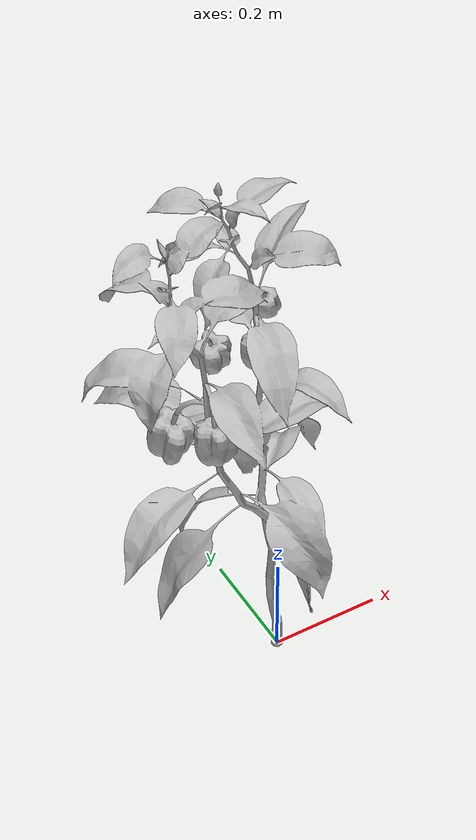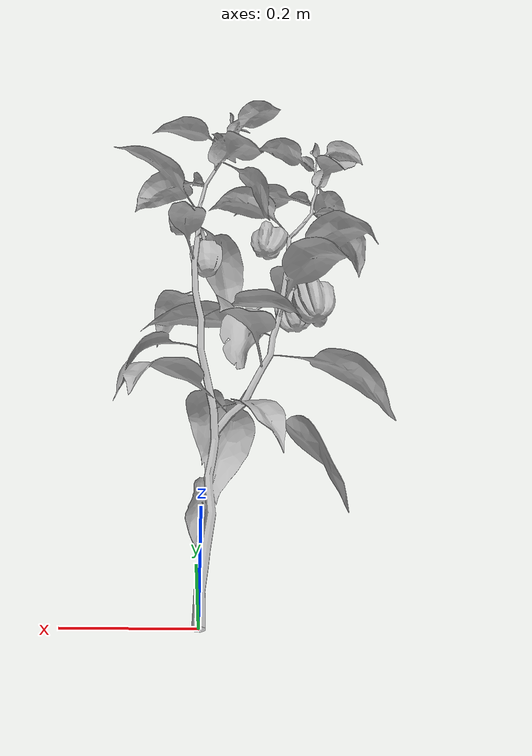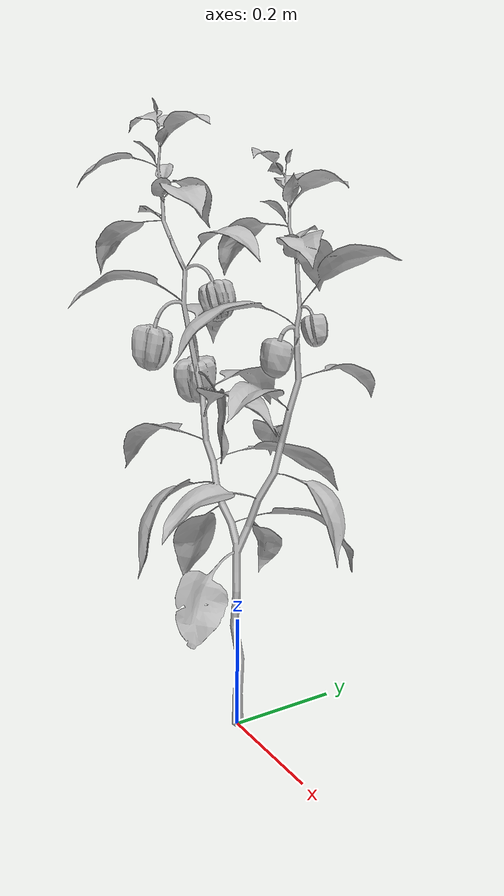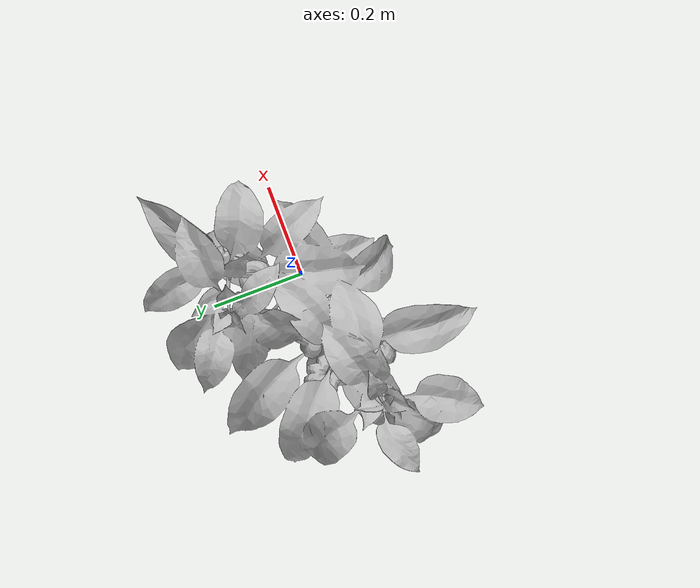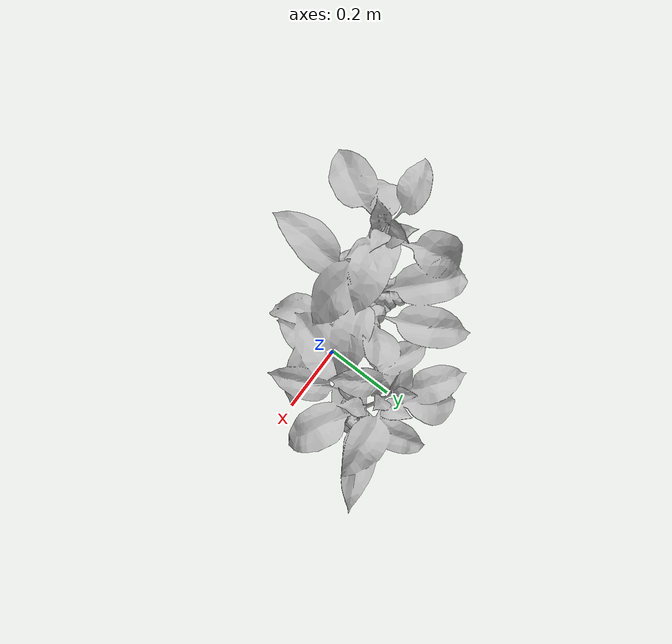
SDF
<?xml version='1.0'?>
<sdf version='1.6'>

  <model name='capsicum_plant_5_detachable'>

    <static>1</static>

    <link name='link_capsicum_plant_5_body'>
       <visual name='visual'>
        <pose frame=''>0 0 0 0 0 0</pose>
        <geometry>
          <mesh>
            <uri>model://capsicum_plant_5_detachable/meshes/VG07_5_without_fruit.dae</uri>
          </mesh>
        </geometry>
      </visual>
    </link>

    <link name='link_capsicum_plant_5_fruit1'>
       <visual name='visual'>
        <pose frame=''>0 0 0 0 0 0</pose>
        <geometry>
          <mesh>
            <uri>model://capsicum_plant_5_detachable/meshes/VG07_5_fruit1.dae</uri>
          </mesh>
        </geometry>
      </visual>
    </link>

    <link name='link_capsicum_plant_5_fruit2'>
       <visual name='visual'>
        <pose frame=''>0 0 0 0 0 0</pose>
        <geometry>
          <mesh>
            <uri>model://capsicum_plant_5_detachable/meshes/VG07_5_fruit2.dae</uri>
          </mesh>
        </geometry>
      </visual>
    </link>

    <link name='link_capsicum_plant_5_fruit3'>
       <visual name='visual'>
        <pose frame=''>0 0 0 0 0 0</pose>
        <geometry>
          <mesh>
            <uri>model://capsicum_plant_5_detachable/meshes/VG07_5_fruit3.dae</uri>
          </mesh>
        </geometry>
      </visual>
    </link>

    <link name='link_capsicum_plant_5_fruit4'>
       <visual name='visual'>
        <pose frame=''>0 0 0 0 0 0</pose>
        <geometry>
          <mesh>
            <uri>model://capsicum_plant_5_detachable/meshes/VG07_5_fruit4.dae</uri>
          </mesh>
        </geometry>
      </visual>
    </link>

    <link name='link_capsicum_plant_5_fruit5'>
       <visual name='visual'>
        <pose frame=''>0 0 0 0 0 0</pose>
        <geometry>
          <mesh>
            <uri>model://capsicum_plant_5_detachable/meshes/VG07_5_fruit5.dae</uri>
          </mesh>
        </geometry>
      </visual>
    </link>

  </model>

</sdf>
